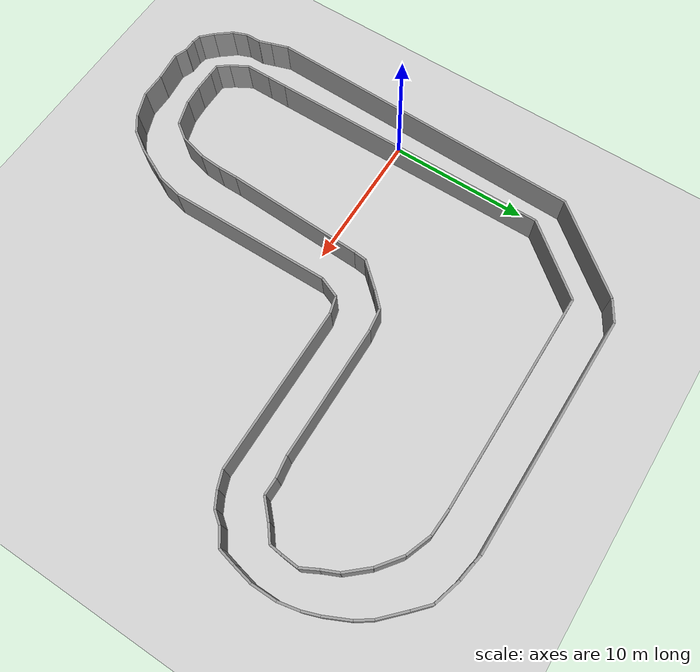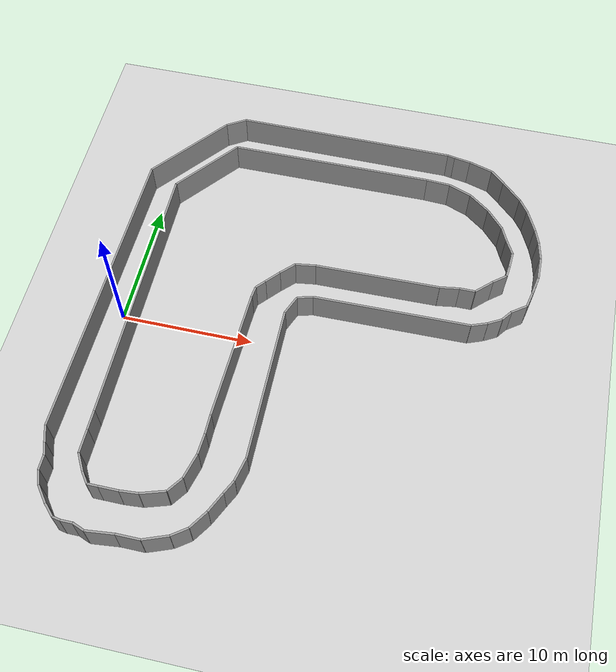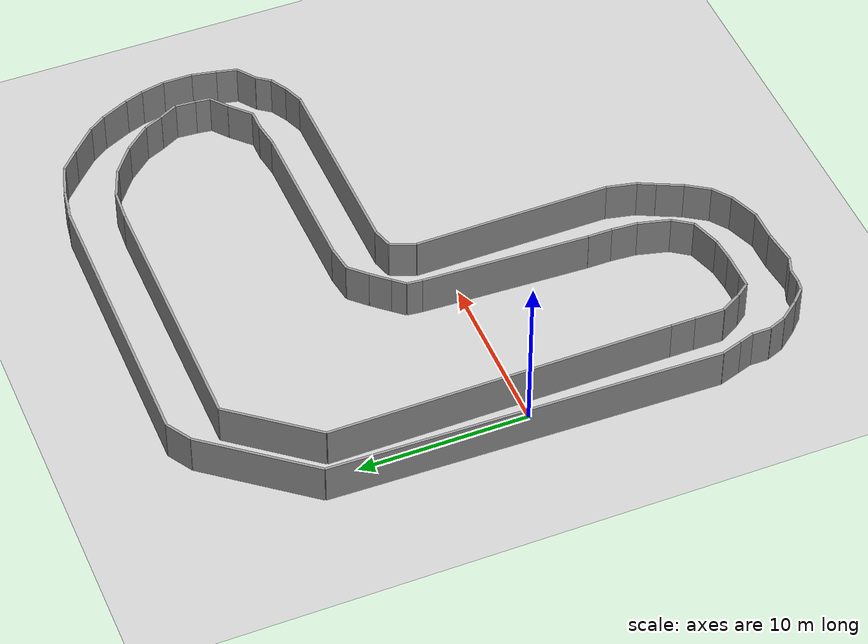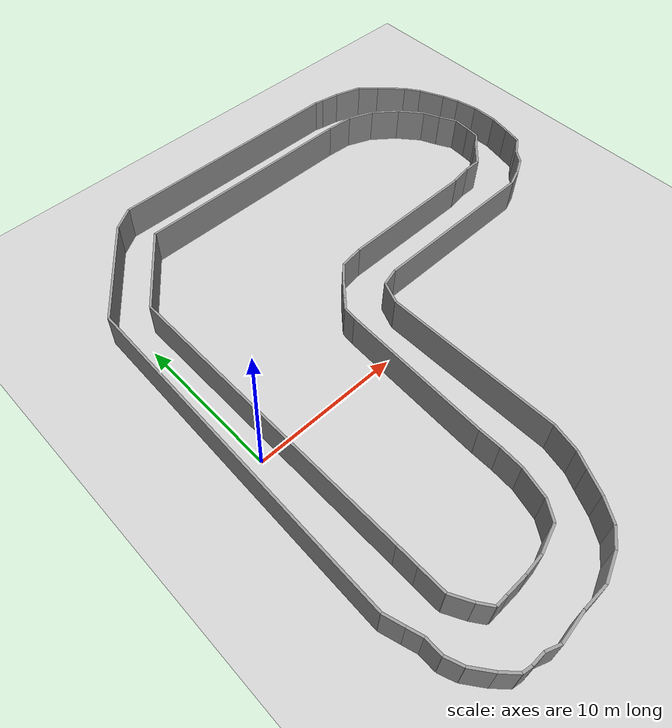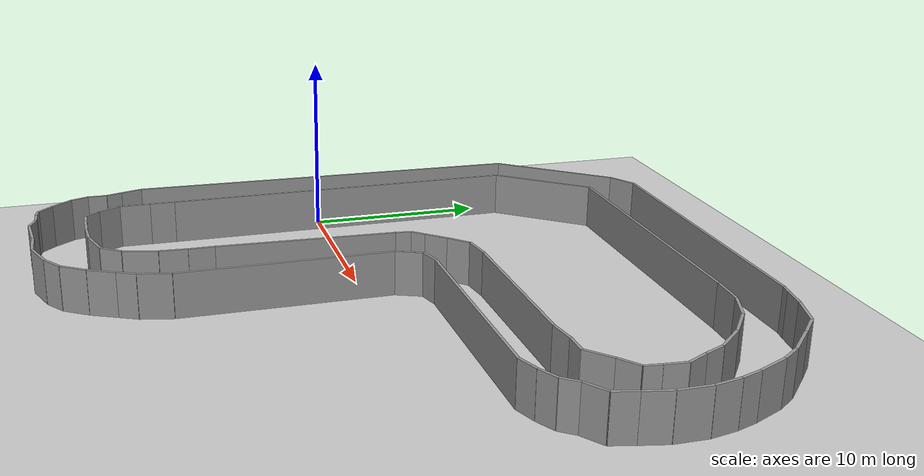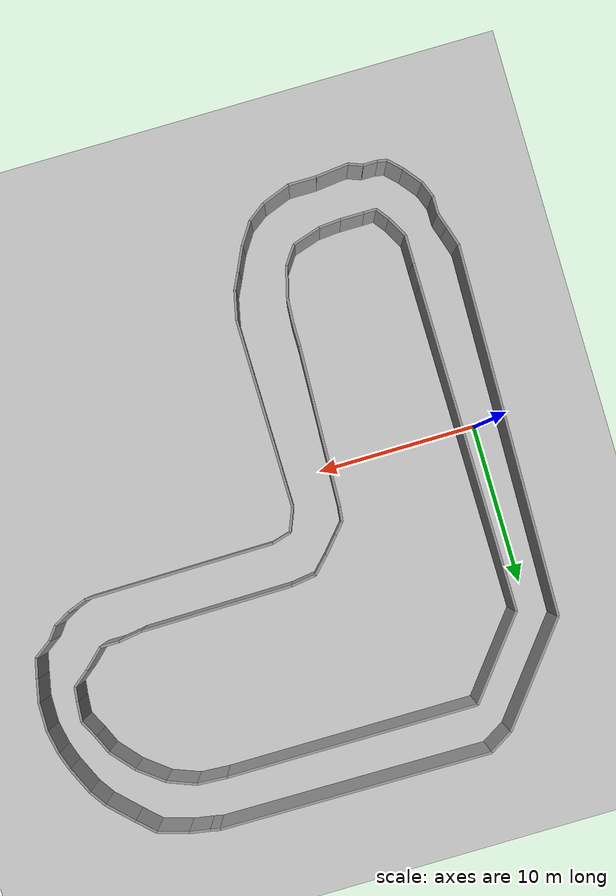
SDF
<sdf version="1.6">
 <world name="default">
  <model name="ground_plane">
   <static>1</static>
   <link name="link">
    <collision name="collision">
     <geometry><plane><normal>0 0 1</normal><size>100 100</size></plane></geometry>
     <surface><friction><ode><mu>100</mu><mu2>50</mu2></ode></friction></surface>
    </collision>
    <visual name="visual">
     <cast_shadows>0</cast_shadows>
     <geometry><plane><normal>0 0 1</normal><size>100 100</size></plane></geometry>
     <material>
      <script><uri>file://media/materials/scripts/gazebo.material</uri><name>Gazebo/Grey</name></script>
     </material>
    </visual>
   </link>
  </model>
  <model name="track2">
   <link name="wall_000">
    <collision name="wall_000_Collision">
     <geometry><box><size>1.431500 0.15 2.5</size></box></geometry>
     <pose>0 0 1.25 0 -0 0</pose>
    </collision>
    <visual name="wall_000_Visual">
     <pose>0 0 1.25 0 -0 0</pose>
     <geometry><box><size>1.431500 0.15 2.5</size></box></geometry>
     <material>
      <script><uri>file://media/materials/scripts/gazebo.material</uri><name>Gazebo/Grey</name></script>
      <ambient>1 1 1 1</ambient>
     </material>
     <meta><layer>0</layer></meta>
    </visual>
    <pose>1.160250 -9.630250 0 0 -0 1.570796</pose>
   </link>
   <link name="wall_001">
    <collision name="wall_001_Collision">
     <geometry><box><size>1.760500 0.15 2.5</size></box></geometry>
     <pose>0 0 1.25 0 -0 0</pose>
    </collision>
    <visual name="wall_001_Visual">
     <pose>0 0 1.25 0 -0 0</pose>
     <geometry><box><size>1.760500 0.15 2.5</size></box></geometry>
     <material>
      <script><uri>file://media/materials/scripts/gazebo.material</uri><name>Gazebo/Grey</name></script>
      <ambient>1 1 1 1</ambient>
     </material>
     <meta><layer>0</layer></meta>
    </visual>
    <pose>1.160250 -11.226250 0 0 -0 1.570796</pose>
   </link>
   <link name="wall_002">
    <collision name="wall_002_Collision">
     <geometry><box><size>1.387512 0.15 2.5</size></box></geometry>
     <pose>0 0 1.25 0 -0 0</pose>
    </collision>
    <visual name="wall_002_Visual">
     <pose>0 0 1.25 0 -0 0</pose>
     <geometry><box><size>1.387512 0.15 2.5</size></box></geometry>
     <material>
      <script><uri>file://media/materials/scripts/gazebo.material</uri><name>Gazebo/Grey</name></script>
      <ambient>1 1 1 1</ambient>
     </material>
     <meta><layer>0</layer></meta>
    </visual>
    <pose>1.498875 -12.712000 0 0 -0 2.080712</pose>
   </link>
   <link name="wall_003">
    <collision name="wall_003_Collision">
     <geometry><box><size>0.963551 0.15 2.5</size></box></geometry>
     <pose>0 0 1.25 0 -0 0</pose>
    </collision>
    <visual name="wall_003_Visual">
     <pose>0 0 1.25 0 -0 0</pose>
     <geometry><box><size>0.963551 0.15 2.5</size></box></geometry>
     <material>
      <script><uri>file://media/materials/scripts/gazebo.material</uri><name>Gazebo/Grey</name></script>
      <ambient>1 1 1 1</ambient>
     </material>
     <meta><layer>0</layer></meta>
    </visual>
    <pose>2.127125 -13.702500 0 0 -0 2.215750</pose>
   </link>
   <link name="wall_004">
    <collision name="wall_004_Collision">
     <geometry><box><size>0.773500 0.15 2.5</size></box></geometry>
     <pose>0 0 1.25 0 -0 0</pose>
    </collision>
    <visual name="wall_004_Visual">
     <pose>0 0 1.25 0 -0 0</pose>
     <geometry><box><size>0.773500 0.15 2.5</size></box></geometry>
     <material>
      <script><uri>file://media/materials/scripts/gazebo.material</uri><name>Gazebo/Grey</name></script>
      <ambient>1 1 1 1</ambient>
     </material>
     <meta><layer>0</layer></meta>
    </visual>
    <pose>2.803500 -14.087500 0 0 -0 3.141593</pose>
   </link>
   <link name="wall_005">
    <collision name="wall_005_Collision">
     <geometry><box><size>1.450750 0.15 2.5</size></box></geometry>
     <pose>0 0 1.25 0 -0 0</pose>
    </collision>
    <visual name="wall_005_Visual">
     <pose>0 0 1.25 0 -0 0</pose>
     <geometry><box><size>1.450750 0.15 2.5</size></box></geometry>
     <material>
      <script><uri>file://media/materials/scripts/gazebo.material</uri><name>Gazebo/Grey</name></script>
      <ambient>1 1 1 1</ambient>
     </material>
     <meta><layer>0</layer></meta>
    </visual>
    <pose>3.915625 -14.087500 0 0 -0 3.141593</pose>
   </link>
   <link name="wall_006">
    <collision name="wall_006_Collision">
     <geometry><box><size>1.357094 0.15 2.5</size></box></geometry>
     <pose>0 0 1.25 0 -0 0</pose>
    </collision>
    <visual name="wall_006_Visual">
     <pose>0 0 1.25 0 -0 0</pose>
     <geometry><box><size>1.357094 0.15 2.5</size></box></geometry>
     <material>
      <script><uri>file://media/materials/scripts/gazebo.material</uri><name>Gazebo/Grey</name></script>
      <ambient>1 1 1 1</ambient>
     </material>
     <meta><layer>0</layer></meta>
    </visual>
    <pose>5.317375 -14.033250 0 0 -0 -3.061557</pose>
   </link>
   <link name="wall_007">
    <collision name="wall_007_Collision">
     <geometry><box><size>1.826954 0.15 2.5</size></box></geometry>
     <pose>0 0 1.25 0 -0 0</pose>
    </collision>
    <visual name="wall_007_Visual">
     <pose>0 0 1.25 0 -0 0</pose>
     <geometry><box><size>1.826954 0.15 2.5</size></box></geometry>
     <material>
      <script><uri>file://media/materials/scripts/gazebo.material</uri><name>Gazebo/Grey</name></script>
      <ambient>1 1 1 1</ambient>
     </material>
     <meta><layer>0</layer></meta>
    </visual>
    <pose>6.864375 -13.702500 0 0 -0 -2.834079</pose>
   </link>
   <link name="wall_008">
    <collision name="wall_008_Collision">
     <geometry><box><size>1.343913 0.15 2.5</size></box></geometry>
     <pose>0 0 1.25 0 -0 0</pose>
    </collision>
    <visual name="wall_008_Visual">
     <pose>0 0 1.25 0 -0 0</pose>
     <geometry><box><size>1.343913 0.15 2.5</size></box></geometry>
     <material>
      <script><uri>file://media/materials/scripts/gazebo.material</uri><name>Gazebo/Grey</name></script>
      <ambient>1 1 1 1</ambient>
     </material>
     <meta><layer>0</layer></meta>
    </visual>
    <pose>8.121750 -12.876500 0 0 -0 -2.184083</pose>
   </link>
   <link name="wall_009">
    <collision name="wall_009_Collision">
     <geometry><box><size>1.933790 0.15 2.5</size></box></geometry>
     <pose>0 0 1.25 0 -0 0</pose>
    </collision>
    <visual name="wall_009_Visual">
     <pose>0 0 1.25 0 -0 0</pose>
     <geometry><box><size>1.933790 0.15 2.5</size></box></geometry>
     <material>
      <script><uri>file://media/materials/scripts/gazebo.material</uri><name>Gazebo/Grey</name></script>
      <ambient>1 1 1 1</ambient>
     </material>
     <meta><layer>0</layer></meta>
    </visual>
    <pose>8.750000 -11.390750 0 0 -0 -1.823238</pose>
   </link>
   <link name="wall_010">
    <collision name="wall_010_Collision">
     <geometry><box><size>1.543005 0.15 2.5</size></box></geometry>
     <pose>0 0 1.25 0 -0 0</pose>
    </collision>
    <visual name="wall_010_Visual">
     <pose>0 0 1.25 0 -0 0</pose>
     <geometry><box><size>1.543005 0.15 2.5</size></box></geometry>
     <material>
      <script><uri>file://media/materials/scripts/gazebo.material</uri><name>Gazebo/Grey</name></script>
      <ambient>1 1 1 1</ambient>
     </material>
     <meta><layer>0</layer></meta>
    </visual>
    <pose>9.039625 -9.684500 0 0 -0 -1.633215</pose>
   </link>
   <link name="wall_011">
    <collision name="wall_011_Collision">
     <geometry><box><size>1.431500 0.15 2.5</size></box></geometry>
     <pose>0 0 1.25 0 -0 0</pose>
    </collision>
    <visual name="wall_011_Visual">
     <pose>0 0 1.25 0 -0 0</pose>
     <geometry><box><size>1.431500 0.15 2.5</size></box></geometry>
     <material>
      <script><uri>file://media/materials/scripts/gazebo.material</uri><name>Gazebo/Grey</name></script>
      <ambient>1 1 1 1</ambient>
     </material>
     <meta><layer>0</layer></meta>
    </visual>
    <pose>9.087750 -8.198750 0 0 -0 -1.570796</pose>
   </link>
   <link name="wall_012">
    <collision name="wall_012_Collision">
     <geometry><box><size>9.912548 0.15 2.5</size></box></geometry>
     <pose>0 0 1.25 0 -0 0</pose>
    </collision>
    <visual name="wall_012_Visual">
     <pose>0 0 1.25 0 -0 0</pose>
     <geometry><box><size>9.912548 0.15 2.5</size></box></geometry>
     <material>
      <script><uri>file://media/materials/scripts/gazebo.material</uri><name>Gazebo/Grey</name></script>
      <ambient>1 1 1 1</ambient>
     </material>
     <meta><layer>0</layer></meta>
    </visual>
    <pose>9.281125 -2.530500 0 0 -0 -1.609822</pose>
   </link>
   <link name="wall_013">
    <collision name="wall_013_Collision">
     <geometry><box><size>0.885688 0.15 2.5</size></box></geometry>
     <pose>0 0 1.25 0 -0 0</pose>
    </collision>
    <visual name="wall_013_Visual">
     <pose>0 0 1.25 0 -0 0</pose>
     <geometry><box><size>0.885688 0.15 2.5</size></box></geometry>
     <material>
      <script><uri>file://media/materials/scripts/gazebo.material</uri><name>Gazebo/Grey</name></script>
      <ambient>1 1 1 1</ambient>
     </material>
     <meta><layer>0</layer></meta>
    </visual>
    <pose>9.523500 2.862125 0 0 -0 -1.681672</pose>
   </link>
   <link name="wall_014">
    <collision name="wall_014_Collision">
     <geometry><box><size>0.877953 0.15 2.5</size></box></geometry>
     <pose>0 0 1.25 0 -0 0</pose>
    </collision>
    <visual name="wall_014_Visual">
     <pose>0 0 1.25 0 -0 0</pose>
     <geometry><box><size>0.877953 0.15 2.5</size></box></geometry>
     <material>
      <script><uri>file://media/materials/scripts/gazebo.material</uri><name>Gazebo/Grey</name></script>
      <ambient>1 1 1 1</ambient>
     </material>
     <meta><layer>0</layer></meta>
    </visual>
    <pose>9.862125 3.632125 0 0 -0 -2.291314</pose>
   </link>
   <link name="wall_015">
    <collision name="wall_015_Collision">
     <geometry><box><size>1.318164 0.15 2.5</size></box></geometry>
     <pose>0 0 1.25 0 -0 0</pose>
    </collision>
    <visual name="wall_015_Visual">
     <pose>0 0 1.25 0 -0 0</pose>
     <geometry><box><size>1.318164 0.15 2.5</size></box></geometry>
     <material>
      <script><uri>file://media/materials/scripts/gazebo.material</uri><name>Gazebo/Grey</name></script>
      <ambient>1 1 1 1</ambient>
     </material>
     <meta><layer>0</layer></meta>
    </visual>
    <pose>10.586625 4.457250 0 0 -0 -2.291375</pose>
   </link>
   <link name="wall_016">
    <collision name="wall_016_Collision">
     <geometry><box><size>1.384785 0.15 2.5</size></box></geometry>
     <pose>0 0 1.25 0 -0 0</pose>
    </collision>
    <visual name="wall_016_Visual">
     <pose>0 0 1.25 0 -0 0</pose>
     <geometry><box><size>1.384785 0.15 2.5</size></box></geometry>
     <material>
      <script><uri>file://media/materials/scripts/gazebo.material</uri><name>Gazebo/Grey</name></script>
      <ambient>1 1 1 1</ambient>
     </material>
     <meta><layer>0</layer></meta>
    </visual>
    <pose>11.505375 5.447750 0 0 -0 -2.344577</pose>
   </link>
   <link name="wall_017">
    <collision name="wall_017_Collision">
     <geometry><box><size>1.562635 0.15 2.5</size></box></geometry>
     <pose>0 0 1.25 0 -0 0</pose>
    </collision>
    <visual name="wall_017_Visual">
     <pose>0 0 1.25 0 -0 0</pose>
     <geometry><box><size>1.562635 0.15 2.5</size></box></geometry>
     <material>
      <script><uri>file://media/materials/scripts/gazebo.material</uri><name>Gazebo/Grey</name></script>
      <ambient>1 1 1 1</ambient>
     </material>
     <meta><layer>0</layer></meta>
    </visual>
    <pose>12.762750 6.053250 0 0 -0 -3.000012</pose>
   </link>
   <link name="wall_018">
    <collision name="wall_018_Collision">
     <geometry><box><size>9.371878 0.15 2.5</size></box></geometry>
     <pose>0 0 1.25 0 -0 0</pose>
    </collision>
    <visual name="wall_018_Visual">
     <pose>0 0 1.25 0 -0 0</pose>
     <geometry><box><size>9.371878 0.15 2.5</size></box></geometry>
     <material>
      <script><uri>file://media/materials/scripts/gazebo.material</uri><name>Gazebo/Grey</name></script>
      <ambient>1 1 1 1</ambient>
     </material>
     <meta><layer>0</layer></meta>
    </visual>
    <pose>18.221875 6.217750 0 0 -0 -3.130015</pose>
   </link>
   <link name="wall_019">
    <collision name="wall_019_Collision">
     <geometry><box><size>1.469141 0.15 2.5</size></box></geometry>
     <pose>0 0 1.25 0 -0 0</pose>
    </collision>
    <visual name="wall_019_Visual">
     <pose>0 0 1.25 0 -0 0</pose>
     <geometry><box><size>1.469141 0.15 2.5</size></box></geometry>
     <material>
      <script><uri>file://media/materials/scripts/gazebo.material</uri><name>Gazebo/Grey</name></script>
      <ambient>1 1 1 1</ambient>
     </material>
     <meta><layer>0</layer></meta>
    </visual>
    <pose>23.633750 6.382250 0 0 -0 -2.990936</pose>
   </link>
   <link name="wall_020">
    <collision name="wall_020_Collision">
     <geometry><box><size>1.172500 0.15 2.5</size></box></geometry>
     <pose>0 0 1.25 0 -0 0</pose>
    </collision>
    <visual name="wall_020_Visual">
     <pose>0 0 1.25 0 -0 0</pose>
     <geometry><box><size>1.172500 0.15 2.5</size></box></geometry>
     <material>
      <script><uri>file://media/materials/scripts/gazebo.material</uri><name>Gazebo/Grey</name></script>
      <ambient>1 1 1 1</ambient>
     </material>
     <meta><layer>0</layer></meta>
    </visual>
    <pose>24.946250 6.492500 0 0 -0 3.141593</pose>
   </link>
   <link name="wall_021">
    <collision name="wall_021_Collision">
     <geometry><box><size>1.596725 0.15 2.5</size></box></geometry>
     <pose>0 0 1.25 0 -0 0</pose>
    </collision>
    <visual name="wall_021_Visual">
     <pose>0 0 1.25 0 -0 0</pose>
     <geometry><box><size>1.596725 0.15 2.5</size></box></geometry>
     <material>
      <script><uri>file://media/materials/scripts/gazebo.material</uri><name>Gazebo/Grey</name></script>
      <ambient>1 1 1 1</ambient>
     </material>
     <meta><layer>0</layer></meta>
    </visual>
    <pose>26.110000 7.043750 0 0 -0 -2.379446</pose>
   </link>
   <link name="wall_022">
    <collision name="wall_022_Collision">
     <geometry><box><size>1.232601 0.15 2.5</size></box></geometry>
     <pose>0 0 1.25 0 -0 0</pose>
    </collision>
    <visual name="wall_022_Visual">
     <pose>0 0 1.25 0 -0 0</pose>
     <geometry><box><size>1.232601 0.15 2.5</size></box></geometry>
     <material>
      <script><uri>file://media/materials/scripts/gazebo.material</uri><name>Gazebo/Grey</name></script>
      <ambient>1 1 1 1</ambient>
     </material>
     <meta><layer>0</layer></meta>
    </visual>
    <pose>27.168750 7.980000 0 0 -0 -2.466852</pose>
   </link>
   <link name="wall_023">
    <collision name="wall_023_Collision">
     <geometry><box><size>0.888228 0.15 2.5</size></box></geometry>
     <pose>0 0 1.25 0 -0 0</pose>
    </collision>
    <visual name="wall_023_Visual">
     <pose>0 0 1.25 0 -0 0</pose>
     <geometry><box><size>0.888228 0.15 2.5</size></box></geometry>
     <material>
      <script><uri>file://media/materials/scripts/gazebo.material</uri><name>Gazebo/Grey</name></script>
      <ambient>1 1 1 1</ambient>
     </material>
     <meta><layer>0</layer></meta>
    </visual>
    <pose>27.702500 8.806000 0 0 -0 -1.689286</pose>
   </link>
   <link name="wall_024">
    <collision name="wall_024_Collision">
     <geometry><box><size>1.210666 0.15 2.5</size></box></geometry>
     <pose>0 0 1.25 0 -0 0</pose>
    </collision>
    <visual name="wall_024_Visual">
     <pose>0 0 1.25 0 -0 0</pose>
     <geometry><box><size>1.210666 0.15 2.5</size></box></geometry>
     <material>
      <script><uri>file://media/materials/scripts/gazebo.material</uri><name>Gazebo/Grey</name></script>
      <ambient>1 1 1 1</ambient>
     </material>
     <meta><layer>0</layer></meta>
    </visual>
    <pose>27.798750 9.850750 0 0 -0 -1.643134</pose>
   </link>
   <link name="wall_025">
    <collision name="wall_025_Collision">
     <geometry><box><size>1.244593 0.15 2.5</size></box></geometry>
     <pose>0 0 1.25 0 -0 0</pose>
    </collision>
    <visual name="wall_025_Visual">
     <pose>0 0 1.25 0 -0 0</pose>
     <geometry><box><size>1.244593 0.15 2.5</size></box></geometry>
     <material>
      <script><uri>file://media/materials/scripts/gazebo.material</uri><name>Gazebo/Grey</name></script>
      <ambient>1 1 1 1</ambient>
     </material>
     <meta><layer>0</layer></meta>
    </visual>
    <pose>27.553750 11.005750 0 0 -0 -1.088283</pose>
   </link>
   <link name="wall_026">
    <collision name="wall_026_Collision">
     <geometry><box><size>1.203288 0.15 2.5</size></box></geometry>
     <pose>0 0 1.25 0 -0 0</pose>
    </collision>
    <visual name="wall_026_Visual">
     <pose>0 0 1.25 0 -0 0</pose>
     <geometry><box><size>1.203288 0.15 2.5</size></box></geometry>
     <material>
      <script><uri>file://media/materials/scripts/gazebo.material</uri><name>Gazebo/Grey</name></script>
      <ambient>1 1 1 1</ambient>
     </material>
     <meta><layer>0</layer></meta>
    </visual>
    <pose>27.020000 12.106500 0 0 -0 -1.151391</pose>
   </link>
   <link name="wall_027">
    <collision name="wall_027_Collision">
     <geometry><box><size>1.895521 0.15 2.5</size></box></geometry>
     <pose>0 0 1.25 0 -0 0</pose>
    </collision>
    <visual name="wall_027_Visual">
     <pose>0 0 1.25 0 -0 0</pose>
     <geometry><box><size>1.895521 0.15 2.5</size></box></geometry>
     <material>
      <script><uri>file://media/materials/scripts/gazebo.material</uri><name>Gazebo/Grey</name></script>
      <ambient>1 1 1 1</ambient>
     </material>
     <meta><layer>0</layer></meta>
    </visual>
    <pose>26.153750 13.371750 0 0 -0 -0.855961</pose>
   </link>
   <link name="wall_028">
    <collision name="wall_028_Collision">
     <geometry><box><size>1.972898 0.15 2.5</size></box></geometry>
     <pose>0 0 1.25 0 -0 0</pose>
    </collision>
    <visual name="wall_028_Visual">
     <pose>0 0 1.25 0 -0 0</pose>
     <geometry><box><size>1.972898 0.15 2.5</size></box></geometry>
     <material>
      <script><uri>file://media/materials/scripts/gazebo.material</uri><name>Gazebo/Grey</name></script>
      <ambient>1 1 1 1</ambient>
     </material>
     <meta><layer>0</layer></meta>
    </visual>
    <pose>24.753750 14.693000 0 0 -0 -0.660888</pose>
   </link>
   <link name="wall_029">
    <collision name="wall_029_Collision">
     <geometry><box><size>1.854491 0.15 2.5</size></box></geometry>
     <pose>0 0 1.25 0 -0 0</pose>
    </collision>
    <visual name="wall_029_Visual">
     <pose>0 0 1.25 0 -0 0</pose>
     <geometry><box><size>1.854491 0.15 2.5</size></box></geometry>
     <material>
      <script><uri>file://media/materials/scripts/gazebo.material</uri><name>Gazebo/Grey</name></script>
      <ambient>1 1 1 1</ambient>
     </material>
     <meta><layer>0</layer></meta>
    </visual>
    <pose>23.108750 15.629250 0 0 -0 -0.364735</pose>
   </link>
   <link name="wall_030">
    <collision name="wall_030_Collision">
     <geometry><box><size>1.840701 0.15 2.5</size></box></geometry>
     <pose>0 0 1.25 0 -0 0</pose>
    </collision>
    <visual name="wall_030_Visual">
     <pose>0 0 1.25 0 -0 0</pose>
     <geometry><box><size>1.840701 0.15 2.5</size></box></geometry>
     <material>
      <script><uri>file://media/materials/scripts/gazebo.material</uri><name>Gazebo/Grey</name></script>
      <ambient>1 1 1 1</ambient>
     </material>
     <meta><layer>0</layer></meta>
    </visual>
    <pose>21.323750 16.014250 0 0 -0 -0.058979</pose>
   </link>
   <link name="wall_031">
    <collision name="wall_031_Collision">
     <geometry><box><size>15.571500 0.15 2.5</size></box></geometry>
     <pose>0 0 1.25 0 -0 0</pose>
    </collision>
    <visual name="wall_031_Visual">
     <pose>0 0 1.25 0 -0 0</pose>
     <geometry><box><size>15.571500 0.15 2.5</size></box></geometry>
     <material>
      <script><uri>file://media/materials/scripts/gazebo.material</uri><name>Gazebo/Grey</name></script>
      <ambient>1 1 1 1</ambient>
     </material>
     <meta><layer>0</layer></meta>
    </visual>
    <pose>12.619250 16.068500 0 0 -0 0.000000</pose>
   </link>
   <link name="wall_032">
    <collision name="wall_032_Collision">
     <geometry><box><size>6.050199 0.15 2.5</size></box></geometry>
     <pose>0 0 1.25 0 -0 0</pose>
    </collision>
    <visual name="wall_032_Visual">
     <pose>0 0 1.25 0 -0 0</pose>
     <geometry><box><size>6.050199 0.15 2.5</size></box></geometry>
     <material>
      <script><uri>file://media/materials/scripts/gazebo.material</uri><name>Gazebo/Grey</name></script>
      <ambient>1 1 1 1</ambient>
     </material>
     <meta><layer>0</layer></meta>
    </visual>
    <pose>2.948487 13.702500 0 0 -0 0.898066</pose>
   </link>
   <link name="wall_033">
    <collision name="wall_033_Collision">
     <geometry><box><size>20.251231 0.15 2.5</size></box></geometry>
     <pose>0 0 1.25 0 -0 0</pose>
    </collision>
    <visual name="wall_033_Visual">
     <pose>0 0 1.25 0 -0 0</pose>
     <geometry><box><size>20.251231 0.15 2.5</size></box></geometry>
     <material>
      <script><uri>file://media/materials/scripts/gazebo.material</uri><name>Gazebo/Grey</name></script>
      <ambient>1 1 1 1</ambient>
     </material>
     <meta><layer>0</layer></meta>
    </visual>
    <pose>1.111862 1.211000 0 0 -0 1.575575</pose>
   </link>
   <link name="wall_034">
    <collision name="wall_034_Collision">
     <geometry><box><size>1.271258 0.15 2.5</size></box></geometry>
     <pose>0 0 1.25 0 -0 0</pose>
    </collision>
    <visual name="wall_034_Visual">
     <pose>0 0 1.25 0 -0 0</pose>
     <geometry><box><size>1.271258 0.15 2.5</size></box></geometry>
     <material>
      <script><uri>file://media/materials/scripts/gazebo.material</uri><name>Gazebo/Grey</name></script>
      <ambient>1 1 1 1</ambient>
     </material>
     <meta><layer>0</layer></meta>
    </visual>
    <pose>-1.547000 -11.280500 0 0 -0 1.879922</pose>
   </link>
   <link name="wall_035">
    <collision name="wall_035_Collision">
     <geometry><box><size>0.928499 0.15 2.5</size></box></geometry>
     <pose>0 0 1.25 0 -0 0</pose>
    </collision>
    <visual name="wall_035_Visual">
     <pose>0 0 1.25 0 -0 0</pose>
     <geometry><box><size>0.928499 0.15 2.5</size></box></geometry>
     <material>
      <script><uri>file://media/materials/scripts/gazebo.material</uri><name>Gazebo/Grey</name></script>
      <ambient>1 1 1 1</ambient>
     </material>
     <meta><layer>0</layer></meta>
    </visual>
    <pose>-1.208550 -12.327000 0 0 -0 1.888613</pose>
   </link>
   <link name="wall_036">
    <collision name="wall_036_Collision">
     <geometry><box><size>1.099000 0.15 2.5</size></box></geometry>
     <pose>0 0 1.25 0 -0 0</pose>
    </collision>
    <visual name="wall_036_Visual">
     <pose>0 0 1.25 0 -0 0</pose>
     <geometry><box><size>1.099000 0.15 2.5</size></box></geometry>
     <material>
      <script><uri>file://media/materials/scripts/gazebo.material</uri><name>Gazebo/Grey</name></script>
      <ambient>1 1 1 1</ambient>
     </material>
     <meta><layer>0</layer></meta>
    </visual>
    <pose>-1.063475 -13.317500 0 0 -0 1.570796</pose>
   </link>
   <link name="wall_037">
    <collision name="wall_037_Collision">
     <geometry><box><size>1.063328 0.15 2.5</size></box></geometry>
     <pose>0 0 1.25 0 -0 0</pose>
    </collision>
    <visual name="wall_037_Visual">
     <pose>0 0 1.25 0 -0 0</pose>
     <geometry><box><size>1.063328 0.15 2.5</size></box></geometry>
     <material>
      <script><uri>file://media/materials/scripts/gazebo.material</uri><name>Gazebo/Grey</name></script>
      <ambient>1 1 1 1</ambient>
     </material>
     <meta><layer>0</layer></meta>
    </visual>
    <pose>-0.870100 -14.362250 0 0 -0 1.943051</pose>
   </link>
   <link name="wall_038">
    <collision name="wall_038_Collision">
     <geometry><box><size>1.404486 0.15 2.5</size></box></geometry>
     <pose>0 0 1.25 0 -0 0</pose>
    </collision>
    <visual name="wall_038_Visual">
     <pose>0 0 1.25 0 -0 0</pose>
     <geometry><box><size>1.404486 0.15 2.5</size></box></geometry>
     <material>
      <script><uri>file://media/materials/scripts/gazebo.material</uri><name>Gazebo/Grey</name></script>
      <ambient>1 1 1 1</ambient>
     </material>
     <meta><layer>0</layer></meta>
    </visual>
    <pose>-0.241675 -15.408750 0 0 -0 2.238921</pose>
   </link>
   <link name="wall_039">
    <collision name="wall_039_Collision">
     <geometry><box><size>1.091422 0.15 2.5</size></box></geometry>
     <pose>0 0 1.25 0 -0 0</pose>
    </collision>
    <visual name="wall_039_Visual">
     <pose>0 0 1.25 0 -0 0</pose>
     <geometry><box><size>1.091422 0.15 2.5</size></box></geometry>
     <material>
      <script><uri>file://media/materials/scripts/gazebo.material</uri><name>Gazebo/Grey</name></script>
      <ambient>1 1 1 1</ambient>
     </material>
     <meta><layer>0</layer></meta>
    </visual>
    <pose>0.580125 -16.345000 0 0 -0 2.358462</pose>
   </link>
   <link name="wall_040">
    <collision name="wall_040_Collision">
     <geometry><box><size>0.590184 0.15 2.5</size></box></geometry>
     <pose>0 0 1.25 0 -0 0</pose>
    </collision>
    <visual name="wall_040_Visual">
     <pose>0 0 1.25 0 -0 0</pose>
     <geometry><box><size>0.590184 0.15 2.5</size></box></geometry>
     <material>
      <script><uri>file://media/materials/scripts/gazebo.material</uri><name>Gazebo/Grey</name></script>
      <ambient>1 1 1 1</ambient>
     </material>
     <meta><layer>0</layer></meta>
    </visual>
    <pose>1.256937 -16.784250 0 0 -0 2.956700</pose>
   </link>
   <link name="wall_041">
    <collision name="wall_041_Collision">
     <geometry><box><size>0.869750 0.15 2.5</size></box></geometry>
     <pose>0 0 1.25 0 -0 0</pose>
    </collision>
    <visual name="wall_041_Visual">
     <pose>0 0 1.25 0 -0 0</pose>
     <geometry><box><size>0.869750 0.15 2.5</size></box></geometry>
     <material>
      <script><uri>file://media/materials/scripts/gazebo.material</uri><name>Gazebo/Grey</name></script>
      <ambient>1 1 1 1</ambient>
     </material>
     <meta><layer>0</layer></meta>
    </visual>
    <pose>1.981875 -16.838500 0 0 -0 3.141593</pose>
   </link>
   <link name="wall_042">
    <collision name="wall_042_Collision">
     <geometry><box><size>0.931140 0.15 2.5</size></box></geometry>
     <pose>0 0 1.25 0 -0 0</pose>
    </collision>
    <visual name="wall_042_Visual">
     <pose>0 0 1.25 0 -0 0</pose>
     <geometry><box><size>0.931140 0.15 2.5</size></box></geometry>
     <material>
      <script><uri>file://media/materials/scripts/gazebo.material</uri><name>Gazebo/Grey</name></script>
      <ambient>1 1 1 1</ambient>
     </material>
     <meta><layer>0</layer></meta>
    </visual>
    <pose>2.851625 -17.004750 0 0 -0 2.776443</pose>
   </link>
   <link name="wall_043">
    <collision name="wall_043_Collision">
     <geometry><box><size>2.043680 0.15 2.5</size></box></geometry>
     <pose>0 0 1.25 0 -0 0</pose>
    </collision>
    <visual name="wall_043_Visual">
     <pose>0 0 1.25 0 -0 0</pose>
     <geometry><box><size>2.043680 0.15 2.5</size></box></geometry>
     <material>
      <script><uri>file://media/materials/scripts/gazebo.material</uri><name>Gazebo/Grey</name></script>
      <ambient>1 1 1 1</ambient>
     </material>
     <meta><layer>0</layer></meta>
    </visual>
    <pose>4.302375 -17.060750 0 0 -0 -3.033489</pose>
   </link>
   <link name="wall_044">
    <collision name="wall_044_Collision">
     <geometry><box><size>1.739500 0.15 2.5</size></box></geometry>
     <pose>0 0 1.25 0 -0 0</pose>
    </collision>
    <visual name="wall_044_Visual">
     <pose>0 0 1.25 0 -0 0</pose>
     <geometry><box><size>1.739500 0.15 2.5</size></box></geometry>
     <material>
      <script><uri>file://media/materials/scripts/gazebo.material</uri><name>Gazebo/Grey</name></script>
      <ambient>1 1 1 1</ambient>
     </material>
     <meta><layer>0</layer></meta>
    </visual>
    <pose>6.188000 -16.950500 0 0 -0 3.141593</pose>
   </link>
   <link name="wall_045">
    <collision name="wall_045_Collision">
     <geometry><box><size>1.862668 0.15 2.5</size></box></geometry>
     <pose>0 0 1.25 0 -0 0</pose>
    </collision>
    <visual name="wall_045_Visual">
     <pose>0 0 1.25 0 -0 0</pose>
     <geometry><box><size>1.862668 0.15 2.5</size></box></geometry>
     <material>
      <script><uri>file://media/materials/scripts/gazebo.material</uri><name>Gazebo/Grey</name></script>
      <ambient>1 1 1 1</ambient>
     </material>
     <meta><layer>0</layer></meta>
    </visual>
    <pose>7.928375 -16.619750 0 0 -0 -2.778533</pose>
   </link>
   <link name="wall_046">
    <collision name="wall_046_Collision">
     <geometry><box><size>1.311974 0.15 2.5</size></box></geometry>
     <pose>0 0 1.25 0 -0 0</pose>
    </collision>
    <visual name="wall_046_Visual">
     <pose>0 0 1.25 0 -0 0</pose>
     <geometry><box><size>1.311974 0.15 2.5</size></box></geometry>
     <material>
      <script><uri>file://media/materials/scripts/gazebo.material</uri><name>Gazebo/Grey</name></script>
      <ambient>1 1 1 1</ambient>
     </material>
     <meta><layer>0</layer></meta>
    </visual>
    <pose>9.330125 -15.904000 0 0 -0 -2.514365</pose>
   </link>
   <link name="wall_047">
    <collision name="wall_047_Collision">
     <geometry><box><size>1.581326 0.15 2.5</size></box></geometry>
     <pose>0 0 1.25 0 -0 0</pose>
    </collision>
    <visual name="wall_047_Visual">
     <pose>0 0 1.25 0 -0 0</pose>
     <geometry><box><size>1.581326 0.15 2.5</size></box></geometry>
     <material>
      <script><uri>file://media/materials/scripts/gazebo.material</uri><name>Gazebo/Grey</name></script>
      <ambient>1 1 1 1</ambient>
     </material>
     <meta><layer>0</layer></meta>
    </visual>
    <pose>10.297000 -14.859250 0 0 -0 -2.154502</pose>
   </link>
   <link name="wall_048">
    <collision name="wall_048_Collision">
     <geometry><box><size>1.582875 0.15 2.5</size></box></geometry>
     <pose>0 0 1.25 0 -0 0</pose>
    </collision>
    <visual name="wall_048_Visual">
     <pose>0 0 1.25 0 -0 0</pose>
     <geometry><box><size>1.582875 0.15 2.5</size></box></geometry>
     <material>
      <script><uri>file://media/materials/scripts/gazebo.material</uri><name>Gazebo/Grey</name></script>
      <ambient>1 1 1 1</ambient>
     </material>
     <meta><layer>0</layer></meta>
    </visual>
    <pose>11.070500 -13.483750 0 0 -0 -2.011698</pose>
   </link>
   <link name="wall_049">
    <collision name="wall_049_Collision">
     <geometry><box><size>1.102757 0.15 2.5</size></box></geometry>
     <pose>0 0 1.25 0 -0 0</pose>
    </collision>
    <visual name="wall_049_Visual">
     <pose>0 0 1.25 0 -0 0</pose>
     <geometry><box><size>1.102757 0.15 2.5</size></box></geometry>
     <material>
      <script><uri>file://media/materials/scripts/gazebo.material</uri><name>Gazebo/Grey</name></script>
      <ambient>1 1 1 1</ambient>
     </material>
     <meta><layer>0</layer></meta>
    </visual>
    <pose>11.650625 -12.272750 0 0 -0 -2.025927</pose>
   </link>
   <link name="wall_050">
    <collision name="wall_050_Collision">
     <geometry><box><size>1.802480 0.15 2.5</size></box></geometry>
     <pose>0 0 1.25 0 -0 0</pose>
    </collision>
    <visual name="wall_050_Visual">
     <pose>0 0 1.25 0 -0 0</pose>
     <geometry><box><size>1.802480 0.15 2.5</size></box></geometry>
     <material>
      <script><uri>file://media/materials/scripts/gazebo.material</uri><name>Gazebo/Grey</name></script>
      <ambient>1 1 1 1</ambient>
     </material>
     <meta><layer>0</layer></meta>
    </visual>
    <pose>12.086375 -10.897250 0 0 -0 -1.787043</pose>
   </link>
   <link name="wall_051">
    <collision name="wall_051_Collision">
     <geometry><box><size>11.668362 0.15 2.5</size></box></geometry>
     <pose>0 0 1.25 0 -0 0</pose>
    </collision>
    <visual name="wall_051_Visual">
     <pose>0 0 1.25 0 -0 0</pose>
     <geometry><box><size>11.668362 0.15 2.5</size></box></geometry>
     <material>
      <script><uri>file://media/materials/scripts/gazebo.material</uri><name>Gazebo/Grey</name></script>
      <ambient>1 1 1 1</ambient>
     </material>
     <meta><layer>0</layer></meta>
    </visual>
    <pose>12.230750 -4.183025 0 0 -0 -1.562397</pose>
   </link>
   <link name="wall_052">
    <collision name="wall_052_Collision">
     <geometry><box><size>1.544263 0.15 2.5</size></box></geometry>
     <pose>0 0 1.25 0 -0 0</pose>
    </collision>
    <visual name="wall_052_Visual">
     <pose>0 0 1.25 0 -0 0</pose>
     <geometry><box><size>1.544263 0.15 2.5</size></box></geometry>
     <material>
      <script><uri>file://media/materials/scripts/gazebo.material</uri><name>Gazebo/Grey</name></script>
      <ambient>1 1 1 1</ambient>
     </material>
     <meta><layer>0</layer></meta>
    </visual>
    <pose>12.472250 2.366350 0 0 -0 -1.956522</pose>
   </link>
   <link name="wall_053">
    <collision name="wall_053_Collision">
     <geometry><box><size>1.206472 0.15 2.5</size></box></geometry>
     <pose>0 0 1.25 0 -0 0</pose>
    </collision>
    <visual name="wall_053_Visual">
     <pose>0 0 1.25 0 -0 0</pose>
     <geometry><box><size>1.206472 0.15 2.5</size></box></geometry>
     <material>
      <script><uri>file://media/materials/scripts/gazebo.material</uri><name>Gazebo/Grey</name></script>
      <ambient>1 1 1 1</ambient>
     </material>
     <meta><layer>0</layer></meta>
    </visual>
    <pose>13.342875 3.247125 0 0 -0 -2.863891</pose>
   </link>
   <link name="wall_054">
    <collision name="wall_054_Collision">
     <geometry><box><size>11.697503 0.15 2.5</size></box></geometry>
     <pose>0 0 1.25 0 -0 0</pose>
    </collision>
    <visual name="wall_054_Visual">
     <pose>0 0 1.25 0 -0 0</pose>
     <geometry><box><size>11.697503 0.15 2.5</size></box></geometry>
     <material>
      <script><uri>file://media/materials/scripts/gazebo.material</uri><name>Gazebo/Grey</name></script>
      <ambient>1 1 1 1</ambient>
     </material>
     <meta><layer>0</layer></meta>
    </visual>
    <pose>19.771500 3.466750 0 0 -0 -3.132317</pose>
   </link>
   <link name="wall_055">
    <collision name="wall_055_Collision">
     <geometry><box><size>1.236328 0.15 2.5</size></box></geometry>
     <pose>0 0 1.25 0 -0 0</pose>
    </collision>
    <visual name="wall_055_Visual">
     <pose>0 0 1.25 0 -0 0</pose>
     <geometry><box><size>1.236328 0.15 2.5</size></box></geometry>
     <material>
      <script><uri>file://media/materials/scripts/gazebo.material</uri><name>Gazebo/Grey</name></script>
      <ambient>1 1 1 1</ambient>
     </material>
     <meta><layer>0</layer></meta>
    </visual>
    <pose>26.197500 3.741500 0 0 -0 -2.776858</pose>
   </link>
   <link name="wall_056">
    <collision name="wall_056_Collision">
     <geometry><box><size>1.123544 0.15 2.5</size></box></geometry>
     <pose>0 0 1.25 0 -0 0</pose>
    </collision>
    <visual name="wall_056_Visual">
     <pose>0 0 1.25 0 -0 0</pose>
     <geometry><box><size>1.123544 0.15 2.5</size></box></geometry>
     <material>
      <script><uri>file://media/materials/scripts/gazebo.material</uri><name>Gazebo/Grey</name></script>
      <ambient>1 1 1 1</ambient>
     </material>
     <meta><layer>0</layer></meta>
    </visual>
    <pose>27.265000 4.236750 0 0 -0 -2.630561</pose>
   </link>
   <link name="wall_057">
    <collision name="wall_057_Collision">
     <geometry><box><size>0.962500 0.15 2.5</size></box></geometry>
     <pose>0 0 1.25 0 -0 0</pose>
    </collision>
    <visual name="wall_057_Visual">
     <pose>0 0 1.25 0 -0 0</pose>
     <geometry><box><size>0.962500 0.15 2.5</size></box></geometry>
     <material>
      <script><uri>file://media/materials/scripts/gazebo.material</uri><name>Gazebo/Grey</name></script>
      <ambient>1 1 1 1</ambient>
     </material>
     <meta><layer>0</layer></meta>
    </visual>
    <pose>28.043750 4.896500 0 0 -0 -2.214297</pose>
   </link>
   <link name="wall_058">
    <collision name="wall_058_Collision">
     <geometry><box><size>1.318279 0.15 2.5</size></box></geometry>
     <pose>0 0 1.25 0 -0 0</pose>
    </collision>
    <visual name="wall_058_Visual">
     <pose>0 0 1.25 0 -0 0</pose>
     <geometry><box><size>1.318279 0.15 2.5</size></box></geometry>
     <material>
      <script><uri>file://media/materials/scripts/gazebo.material</uri><name>Gazebo/Grey</name></script>
      <ambient>1 1 1 1</ambient>
     </material>
     <meta><layer>0</layer></meta>
    </visual>
    <pose>28.866250 5.668250 0 0 -0 -2.514553</pose>
   </link>
   <link name="wall_059">
    <collision name="wall_059_Collision">
     <geometry><box><size>1.239539 0.15 2.5</size></box></geometry>
     <pose>0 0 1.25 0 -0 0</pose>
    </collision>
    <visual name="wall_059_Visual">
     <pose>0 0 1.25 0 -0 0</pose>
     <geometry><box><size>1.239539 0.15 2.5</size></box></geometry>
     <material>
      <script><uri>file://media/materials/scripts/gazebo.material</uri><name>Gazebo/Grey</name></script>
      <ambient>1 1 1 1</ambient>
     </material>
     <meta><layer>0</layer></meta>
    </visual>
    <pose>29.540000 6.658750 0 0 -0 -1.798653</pose>
   </link>
   <link name="wall_060">
    <collision name="wall_060_Collision">
     <geometry><box><size>1.462087 0.15 2.5</size></box></geometry>
     <pose>0 0 1.25 0 -0 0</pose>
    </collision>
    <visual name="wall_060_Visual">
     <pose>0 0 1.25 0 -0 0</pose>
     <geometry><box><size>1.462087 0.15 2.5</size></box></geometry>
     <material>
      <script><uri>file://media/materials/scripts/gazebo.material</uri><name>Gazebo/Grey</name></script>
      <ambient>1 1 1 1</ambient>
     </material>
     <meta><layer>0</layer></meta>
    </visual>
    <pose>29.828750 7.978250 0 0 -0 -1.775703</pose>
   </link>
   <link name="wall_061">
    <collision name="wall_061_Collision">
     <geometry><box><size>1.760500 0.15 2.5</size></box></geometry>
     <pose>0 0 1.25 0 -0 0</pose>
    </collision>
    <visual name="wall_061_Visual">
     <pose>0 0 1.25 0 -0 0</pose>
     <geometry><box><size>1.760500 0.15 2.5</size></box></geometry>
     <material>
      <script><uri>file://media/materials/scripts/gazebo.material</uri><name>Gazebo/Grey</name></script>
      <ambient>1 1 1 1</ambient>
     </material>
     <meta><layer>0</layer></meta>
    </visual>
    <pose>29.977500 9.574250 0 0 -0 -1.570796</pose>
   </link>
   <link name="wall_062">
    <collision name="wall_062_Collision">
     <geometry><box><size>1.462087 0.15 2.5</size></box></geometry>
     <pose>0 0 1.25 0 -0 0</pose>
    </collision>
    <visual name="wall_062_Visual">
     <pose>0 0 1.25 0 -0 0</pose>
     <geometry><box><size>1.462087 0.15 2.5</size></box></geometry>
     <material>
      <script><uri>file://media/materials/scripts/gazebo.material</uri><name>Gazebo/Grey</name></script>
      <ambient>1 1 1 1</ambient>
     </material>
     <meta><layer>0</layer></meta>
    </visual>
    <pose>29.828750 11.170250 0 0 -0 -1.365889</pose>
   </link>
   <link name="wall_063">
    <collision name="wall_063_Collision">
     <geometry><box><size>1.167789 0.15 2.5</size></box></geometry>
     <pose>0 0 1.25 0 -0 0</pose>
    </collision>
    <visual name="wall_063_Visual">
     <pose>0 0 1.25 0 -0 0</pose>
     <geometry><box><size>1.167789 0.15 2.5</size></box></geometry>
     <material>
      <script><uri>file://media/materials/scripts/gazebo.material</uri><name>Gazebo/Grey</name></script>
      <ambient>1 1 1 1</ambient>
     </material>
     <meta><layer>0</layer></meta>
    </visual>
    <pose>29.487500 12.437250 0 0 -0 -1.234829</pose>
   </link>
   <link name="wall_064">
    <collision name="wall_064_Collision">
     <geometry><box><size>1.819465 0.15 2.5</size></box></geometry>
     <pose>0 0 1.25 0 -0 0</pose>
    </collision>
    <visual name="wall_064_Visual">
     <pose>0 0 1.25 0 -0 0</pose>
     <geometry><box><size>1.819465 0.15 2.5</size></box></geometry>
     <material>
      <script><uri>file://media/materials/scripts/gazebo.material</uri><name>Gazebo/Grey</name></script>
      <ambient>1 1 1 1</ambient>
     </material>
     <meta><layer>0</layer></meta>
    </visual>
    <pose>28.910000 13.812750 0 0 -0 -1.133821</pose>
   </link>
   <link name="wall_065">
    <collision name="wall_065_Collision">
     <geometry><box><size>1.202870 0.15 2.5</size></box></geometry>
     <pose>0 0 1.25 0 -0 0</pose>
    </collision>
    <visual name="wall_065_Visual">
     <pose>0 0 1.25 0 -0 0</pose>
     <geometry><box><size>1.202870 0.15 2.5</size></box></geometry>
     <material>
      <script><uri>file://media/materials/scripts/gazebo.material</uri><name>Gazebo/Grey</name></script>
      <ambient>1 1 1 1</ambient>
     </material>
     <meta><layer>0</layer></meta>
    </visual>
    <pose>28.183750 15.132250 0 0 -0 -0.967460</pose>
   </link>
   <link name="wall_066">
    <collision name="wall_066_Collision">
     <geometry><box><size>2.039350 0.15 2.5</size></box></geometry>
     <pose>0 0 1.25 0 -0 0</pose>
    </collision>
    <visual name="wall_066_Visual">
     <pose>0 0 1.25 0 -0 0</pose>
     <geometry><box><size>2.039350 0.15 2.5</size></box></geometry>
     <material>
      <script><uri>file://media/materials/scripts/gazebo.material</uri><name>Gazebo/Grey</name></script>
      <ambient>1 1 1 1</ambient>
     </material>
     <meta><layer>0</layer></meta>
    </visual>
    <pose>27.116250 16.343250 0 0 -0 -0.778117</pose>
   </link>
   <link name="wall_067">
    <collision name="wall_067_Collision">
     <geometry><box><size>1.438670 0.15 2.5</size></box></geometry>
     <pose>0 0 1.25 0 -0 0</pose>
    </collision>
    <visual name="wall_067_Visual">
     <pose>0 0 1.25 0 -0 0</pose>
     <geometry><box><size>1.438670 0.15 2.5</size></box></geometry>
     <material>
      <script><uri>file://media/materials/scripts/gazebo.material</uri><name>Gazebo/Grey</name></script>
      <ambient>1 1 1 1</ambient>
     </material>
     <meta><layer>0</layer></meta>
    </visual>
    <pose>25.865000 17.550750 0 0 -0 -0.752708</pose>
   </link>
   <link name="wall_068">
    <collision name="wall_068_Collision">
     <geometry><box><size>1.920939 0.15 2.5</size></box></geometry>
     <pose>0 0 1.25 0 -0 0</pose>
    </collision>
    <visual name="wall_068_Visual">
     <pose>0 0 1.25 0 -0 0</pose>
     <geometry><box><size>1.920939 0.15 2.5</size></box></geometry>
     <material>
      <script><uri>file://media/materials/scripts/gazebo.material</uri><name>Gazebo/Grey</name></script>
      <ambient>1 1 1 1</ambient>
     </material>
     <meta><layer>0</layer></meta>
    </visual>
    <pose>24.421250 18.322500 0 0 -0 -0.295820</pose>
   </link>
   <link name="wall_069">
    <collision name="wall_069_Collision">
     <geometry><box><size>1.277380 0.15 2.5</size></box></geometry>
     <pose>0 0 1.25 0 -0 0</pose>
    </collision>
    <visual name="wall_069_Visual">
     <pose>0 0 1.25 0 -0 0</pose>
     <geometry><box><size>1.277380 0.15 2.5</size></box></geometry>
     <material>
      <script><uri>file://media/materials/scripts/gazebo.material</uri><name>Gazebo/Grey</name></script>
      <ambient>1 1 1 1</ambient>
     </material>
     <meta><layer>0</layer></meta>
    </visual>
    <pose>22.872500 18.707500 0 0 -0 -0.165149</pose>
   </link>
   <link name="wall_070">
    <collision name="wall_070_Collision">
     <geometry><box><size>0.590349 0.15 2.5</size></box></geometry>
     <pose>0 0 1.25 0 -0 0</pose>
    </collision>
    <visual name="wall_070_Visual">
     <pose>0 0 1.25 0 -0 0</pose>
     <geometry><box><size>0.590349 0.15 2.5</size></box></geometry>
     <material>
      <script><uri>file://media/materials/scripts/gazebo.material</uri><name>Gazebo/Grey</name></script>
      <ambient>1 1 1 1</ambient>
     </material>
     <meta><layer>0</layer></meta>
    </visual>
    <pose>21.953750 18.873750 0 0 -0 -0.209023</pose>
   </link>
   <link name="wall_071">
    <collision name="wall_071_Collision">
     <geometry><box><size>16.831828 0.15 2.5</size></box></geometry>
     <pose>0 0 1.25 0 -0 0</pose>
    </collision>
    <visual name="wall_071_Visual">
     <pose>0 0 1.25 0 -0 0</pose>
     <geometry><box><size>16.831828 0.15 2.5</size></box></geometry>
     <material>
      <script><uri>file://media/materials/scripts/gazebo.material</uri><name>Gazebo/Grey</name></script>
      <ambient>1 1 1 1</ambient>
     </material>
     <meta><layer>0</layer></meta>
    </visual>
    <pose>13.249250 18.987500 0 0 -0 -0.006238</pose>
   </link>
   <link name="wall_072">
    <collision name="wall_072_Collision">
     <geometry><box><size>1.692698 0.15 2.5</size></box></geometry>
     <pose>0 0 1.25 0 -0 0</pose>
    </collision>
    <visual name="wall_072_Visual">
     <pose>0 0 1.25 0 -0 0</pose>
     <geometry><box><size>1.692698 0.15 2.5</size></box></geometry>
     <material>
      <script><uri>file://media/materials/scripts/gazebo.material</uri><name>Gazebo/Grey</name></script>
      <ambient>1 1 1 1</ambient>
     </material>
     <meta><layer>0</layer></meta>
    </visual>
    <pose>4.109000 18.602500 0 0 -0 0.543256</pose>
   </link>
   <link name="wall_073">
    <collision name="wall_073_Collision">
     <geometry><box><size>7.458175 0.15 2.5</size></box></geometry>
     <pose>0 0 1.25 0 -0 0</pose>
    </collision>
    <visual name="wall_073_Visual">
     <pose>0 0 1.25 0 -0 0</pose>
     <geometry><box><size>7.458175 0.15 2.5</size></box></geometry>
     <material>
      <script><uri>file://media/materials/scripts/gazebo.material</uri><name>Gazebo/Grey</name></script>
      <ambient>1 1 1 1</ambient>
     </material>
     <meta><layer>0</layer></meta>
    </visual>
    <pose>1.063825 15.246000 0 0 -0 0.899097</pose>
   </link>
   <link name="wall_074">
    <collision name="wall_074_Collision">
     <geometry><box><size>23.007082 0.15 2.5</size></box></geometry>
     <pose>0 0 1.25 0 -0 0</pose>
    </collision>
    <visual name="wall_074_Visual">
     <pose>0 0 1.25 0 -0 0</pose>
     <geometry><box><size>23.007082 0.15 2.5</size></box></geometry>
     <material>
      <script><uri>file://media/materials/scripts/gazebo.material</uri><name>Gazebo/Grey</name></script>
      <ambient>1 1 1 1</ambient>
     </material>
     <meta><layer>0</layer></meta>
    </visual>
    <pose>-1.498613 0.826000 0 0 -0 1.549778</pose>
   </link>
   <static>1</static>
  </model>
 </world>
</sdf>
